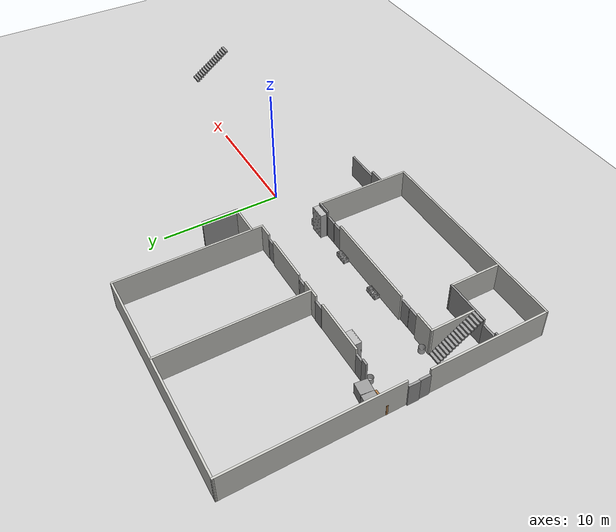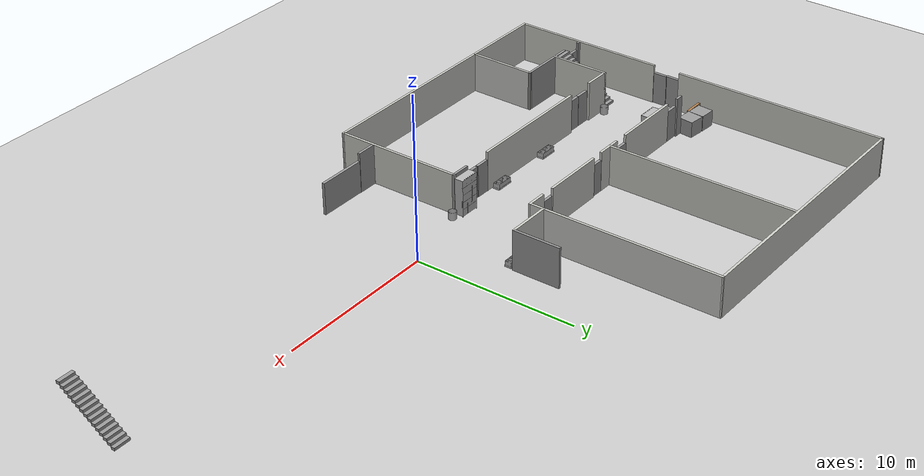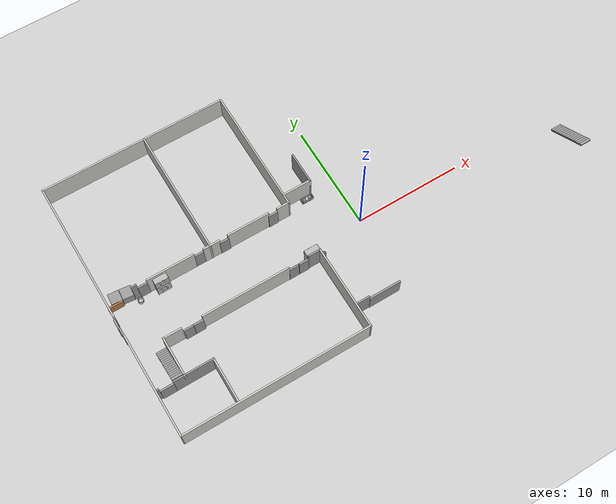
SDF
<sdf version="1.7">
 <world name="default">
  <model name="ground_plane">
   <static>1</static>
   <link name="link">
    <collision name="collision">
     <geometry><plane><normal>0 0 1</normal><size>100 100</size></plane></geometry>
     <surface><friction><ode><mu>100</mu><mu2>50</mu2></ode></friction></surface>
    </collision>
    <visual name="visual">
     <cast_shadows>0</cast_shadows>
     <geometry><plane><normal>0 0 1</normal><size>100 100</size></plane></geometry>
     <material>
      <script><uri>file://media/materials/scripts/gazebo.material</uri><name>Gazebo/Grey</name></script>
     </material>
    </visual>
   </link>
  </model>
  <model name="mts_dept">
   <pose>-0.0371 3.18794 0 0 -0 0</pose>
   <link name="Door_1">
    <collision name="Door_1_Collision">
     <geometry><box><size>0.9 0.17 2</size></box></geometry>
     <pose>0 0 1 0 -0 0</pose>
    </collision>
    <visual name="Door_1_Visual">
     <pose>0 0 1 0 -0 0</pose>
     <geometry><box><size>0.9 0.17 2</size></box></geometry>
     <material>
      <script><uri>file://media/materials/scripts/gazebo.material</uri><name>Gazebo/Grey</name></script>
     </material>
    </visual>
    <pose>-6.58213 -4.65147 0 0 -0 0</pose>
   </link>
   <link name="Door_13">
    <collision name="Door_13_Collision">
     <geometry><box><size>0.9 0.17 2</size></box></geometry>
     <pose>0 0 1 0 -0 0</pose>
    </collision>
    <visual name="Door_13_Visual">
     <pose>0 0 1 0 -0 0</pose>
     <geometry><box><size>0.9 0.17 2</size></box></geometry>
     <material>
      <script><uri>file://media/materials/scripts/gazebo.material</uri><name>Gazebo/Grey</name></script>
     </material>
    </visual>
    <pose>-22.3834 -2.29202 0 0 -0 -1.5708</pose>
   </link>
   <link name="Door_14">
    <collision name="Door_14_Collision">
     <geometry><box><size>0.9 0.17 2</size></box></geometry>
     <pose>0 0 1 0 -0 0</pose>
    </collision>
    <visual name="Door_14_Visual">
     <pose>0 0 1 0 -0 0</pose>
     <geometry><box><size>0.9 0.17 2</size></box></geometry>
     <material>
      <script><uri>file://media/materials/scripts/gazebo.material</uri><name>Gazebo/Grey</name></script>
     </material>
    </visual>
    <pose>-22.4286 -1.43294 0 0 0 -1.59865</pose>
   </link>
   <link name="Door_2">
    <collision name="Door_2_Collision">
     <geometry><box><size>0.9 0.17 2</size></box></geometry>
     <pose>0 0 1 0 -0 0</pose>
    </collision>
    <visual name="Door_2_Visual">
     <pose>0 0 1 0 -0 0</pose>
     <geometry><box><size>0.9 0.17 2</size></box></geometry>
     <material>
      <script><uri>file://media/materials/scripts/gazebo.material</uri><name>Gazebo/Grey</name></script>
     </material>
    </visual>
    <pose>-7.54552 -4.6498 0 0 -0 0</pose>
   </link>
   <link name="Door_20">
    <collision name="Door_20_Collision">
     <geometry><box><size>3 0.17 2</size></box></geometry>
     <pose>0 0 1 0 -0 0</pose>
    </collision>
    <visual name="Door_20_Visual">
     <pose>0 0 1 0 -0 0</pose>
     <geometry><box><size>3 0.17 2</size></box></geometry>
     <material>
      <script><uri>file://media/materials/scripts/gazebo.material</uri><name>Gazebo/Grey</name></script>
     </material>
    </visual>
    <pose>-2.13617 -10.29 0 0 -0 0</pose>
   </link>
   <link name="Door_3">
    <collision name="Door_3_Collision">
     <geometry><box><size>0.9 0.17 2</size></box></geometry>
     <pose>0 0 1 0 -0 0</pose>
    </collision>
    <visual name="Door_3_Visual">
     <pose>0 0 1 0 -0 0</pose>
     <geometry><box><size>0.9 0.17 2</size></box></geometry>
     <material>
      <script><uri>file://media/materials/scripts/gazebo.material</uri><name>Gazebo/Grey</name></script>
     </material>
    </visual>
    <pose>-16.6533 -4.77247 0 0 -0 0</pose>
   </link>
   <link name="Door_4">
    <collision name="Door_4_Collision">
     <geometry><box><size>0.9 0.17 2</size></box></geometry>
     <pose>0 0 1 0 -0 0</pose>
    </collision>
    <visual name="Door_4_Visual">
     <pose>0 0 1 0 -0 0</pose>
     <geometry><box><size>0.9 0.17 2</size></box></geometry>
     <material>
      <script><uri>file://media/materials/scripts/gazebo.material</uri><name>Gazebo/Grey</name></script>
     </material>
    </visual>
    <pose>-17.5712 -4.7776 0 0 -0 0</pose>
   </link>
   <link name="Door_5">
    <collision name="Door_5_Collision">
     <geometry><box><size>1.25 0.17 2</size></box></geometry>
     <pose>0 0 1 0 -0 0</pose>
    </collision>
    <visual name="Door_5_Visual">
     <pose>0 0 1 0 -0 0</pose>
     <geometry><box><size>1.25 0.17 2</size></box></geometry>
     <material>
      <script><uri>file://media/materials/scripts/gazebo.material</uri><name>Gazebo/Grey</name></script>
     </material>
    </visual>
    <pose>-21.413 -8.25478 0 0 -0 0</pose>
   </link>
   <link name="Door_6">
    <collision name="Door_6_Collision">
     <geometry><box><size>0.9 0.17 2</size></box></geometry>
     <pose>0 0 1 0 -0 0</pose>
    </collision>
    <visual name="Door_6_Visual">
     <pose>0 0 1 0 -0 0</pose>
     <geometry><box><size>0.9 0.17 2</size></box></geometry>
     <material>
      <script><uri>file://media/materials/scripts/gazebo.material</uri><name>Gazebo/Grey</name></script>
     </material>
    </visual>
    <pose>-6.55285 0.494639 0 0 -0 0</pose>
   </link>
   <link name="Door_7">
    <collision name="Door_7_Collision">
     <geometry><box><size>0.9 0.17 2</size></box></geometry>
     <pose>0 0 1 0 -0 0</pose>
    </collision>
    <visual name="Door_7_Visual">
     <pose>0 0 1 0 -0 0</pose>
     <geometry><box><size>0.9 0.17 2</size></box></geometry>
     <material>
      <script><uri>file://media/materials/scripts/gazebo.material</uri><name>Gazebo/Grey</name></script>
     </material>
    </visual>
    <pose>-11.3046 0.493458 0 0 -0 0</pose>
   </link>
   <link name="Door_8">
    <collision name="Door_8_Collision">
     <geometry><box><size>0.9 0.17 2</size></box></geometry>
     <pose>0 0 1 0 -0 0</pose>
    </collision>
    <visual name="Door_8_Visual">
     <pose>0 0 1 0 -0 0</pose>
     <geometry><box><size>0.9 0.17 2</size></box></geometry>
     <material>
      <script><uri>file://media/materials/scripts/gazebo.material</uri><name>Gazebo/Grey</name></script>
     </material>
    </visual>
    <pose>-13.6938 0.528828 0 0 -0 0</pose>
   </link>
   <link name="Door_9">
    <collision name="Door_9_Collision">
     <geometry><box><size>0.9 0.17 2</size></box></geometry>
     <pose>0 0 1 0 -0 0</pose>
    </collision>
    <visual name="Door_9_Visual">
     <pose>0 0 1 0 -0 0</pose>
     <geometry><box><size>0.9 0.17 2</size></box></geometry>
     <material>
      <script><uri>file://media/materials/scripts/gazebo.material</uri><name>Gazebo/Grey</name></script>
     </material>
    </visual>
    <pose>-19.0487 0.509221 0 0 -0 0</pose>
   </link>
   <link name="Stairs_0">
    <visual name="Stairs_0_Visual_0">
     <pose>-20.3275 -4.74708 0.083333 0 -0 0</pose>
     <geometry><box><size>1 0.233333 0.166667</size></box></geometry>
     <material>
      <script><uri>file://media/materials/scripts/gazebo.material</uri><name>Gazebo/Grey</name></script>
      <ambient>1 1 1 1</ambient>
     </material>
     <meta><layer>0</layer></meta>
    </visual>
    <collision name="Stairs_0_Collision_0">
     <geometry><box><size>1 0.233333 0.166667</size></box></geometry>
     <pose>-20.3275 -4.74708 0.083333 0 -0 0</pose>
    </collision>
    <visual name="Stairs_0_Visual_1">
     <pose>-20.3275 -4.98041 0.25 0 -0 0</pose>
     <geometry><box><size>1 0.233333 0.166667</size></box></geometry>
     <material>
      <script><uri>file://media/materials/scripts/gazebo.material</uri><name>Gazebo/Grey</name></script>
      <ambient>1 1 1 1</ambient>
     </material>
     <meta><layer>0</layer></meta>
    </visual>
    <collision name="Stairs_0_Collision_1">
     <geometry><box><size>1 0.233333 0.166667</size></box></geometry>
     <pose>-20.3275 -4.98041 0.25 0 -0 0</pose>
    </collision>
    <visual name="Stairs_0_Visual_2">
     <pose>-20.3275 -5.21374 0.416667 0 -0 0</pose>
     <geometry><box><size>1 0.233333 0.166667</size></box></geometry>
     <material>
      <script><uri>file://media/materials/scripts/gazebo.material</uri><name>Gazebo/Grey</name></script>
      <ambient>1 1 1 1</ambient>
     </material>
     <meta><layer>0</layer></meta>
    </visual>
    <collision name="Stairs_0_Collision_2">
     <geometry><box><size>1 0.233333 0.166667</size></box></geometry>
     <pose>-20.3275 -5.21374 0.416667 0 -0 0</pose>
    </collision>
    <visual name="Stairs_0_Visual_3">
     <pose>-20.3275 -5.44708 0.583333 0 -0 0</pose>
     <geometry><box><size>1 0.233333 0.166667</size></box></geometry>
     <material>
      <script><uri>file://media/materials/scripts/gazebo.material</uri><name>Gazebo/Grey</name></script>
      <ambient>1 1 1 1</ambient>
     </material>
     <meta><layer>0</layer></meta>
    </visual>
    <collision name="Stairs_0_Collision_3">
     <geometry><box><size>1 0.233333 0.166667</size></box></geometry>
     <pose>-20.3275 -5.44708 0.583333 0 -0 0</pose>
    </collision>
    <visual name="Stairs_0_Visual_4">
     <pose>-20.3275 -5.68041 0.75 0 -0 0</pose>
     <geometry><box><size>1 0.233333 0.166667</size></box></geometry>
     <material>
      <script><uri>file://media/materials/scripts/gazebo.material</uri><name>Gazebo/Grey</name></script>
      <ambient>1 1 1 1</ambient>
     </material>
     <meta><layer>0</layer></meta>
    </visual>
    <collision name="Stairs_0_Collision_4">
     <geometry><box><size>1 0.233333 0.166667</size></box></geometry>
     <pose>-20.3275 -5.68041 0.75 0 -0 0</pose>
    </collision>
    <visual name="Stairs_0_Visual_5">
     <pose>-20.3275 -5.91374 0.916667 0 -0 0</pose>
     <geometry><box><size>1 0.233333 0.166667</size></box></geometry>
     <material>
      <script><uri>file://media/materials/scripts/gazebo.material</uri><name>Gazebo/Grey</name></script>
      <ambient>1 1 1 1</ambient>
     </material>
     <meta><layer>0</layer></meta>
    </visual>
    <collision name="Stairs_0_Collision_5">
     <geometry><box><size>1 0.233333 0.166667</size></box></geometry>
     <pose>-20.3275 -5.91374 0.916667 0 -0 0</pose>
    </collision>
    <visual name="Stairs_0_Visual_6">
     <pose>-20.3275 -6.14708 1.08333 0 -0 0</pose>
     <geometry><box><size>1 0.233333 0.166667</size></box></geometry>
     <material>
      <script><uri>file://media/materials/scripts/gazebo.material</uri><name>Gazebo/Grey</name></script>
      <ambient>1 1 1 1</ambient>
     </material>
     <meta><layer>0</layer></meta>
    </visual>
    <collision name="Stairs_0_Collision_6">
     <geometry><box><size>1 0.233333 0.166667</size></box></geometry>
     <pose>-20.3275 -6.14708 1.08333 0 -0 0</pose>
    </collision>
    <visual name="Stairs_0_Visual_7">
     <pose>-20.3275 -6.38041 1.25 0 -0 0</pose>
     <geometry><box><size>1 0.233333 0.166667</size></box></geometry>
     <material>
      <script><uri>file://media/materials/scripts/gazebo.material</uri><name>Gazebo/Grey</name></script>
      <ambient>1 1 1 1</ambient>
     </material>
     <meta><layer>0</layer></meta>
    </visual>
    <collision name="Stairs_0_Collision_7">
     <geometry><box><size>1 0.233333 0.166667</size></box></geometry>
     <pose>-20.3275 -6.38041 1.25 0 -0 0</pose>
    </collision>
    <visual name="Stairs_0_Visual_8">
     <pose>-20.3275 -6.61374 1.41667 0 -0 0</pose>
     <geometry><box><size>1 0.233333 0.166667</size></box></geometry>
     <material>
      <script><uri>file://media/materials/scripts/gazebo.material</uri><name>Gazebo/Grey</name></script>
      <ambient>1 1 1 1</ambient>
     </material>
     <meta><layer>0</layer></meta>
    </visual>
    <collision name="Stairs_0_Collision_8">
     <geometry><box><size>1 0.233333 0.166667</size></box></geometry>
     <pose>-20.3275 -6.61374 1.41667 0 -0 0</pose>
    </collision>
    <visual name="Stairs_0_Visual_9">
     <pose>-20.3275 -6.84708 1.58333 0 -0 0</pose>
     <geometry><box><size>1 0.233333 0.166667</size></box></geometry>
     <material>
      <script><uri>file://media/materials/scripts/gazebo.material</uri><name>Gazebo/Grey</name></script>
      <ambient>1 1 1 1</ambient>
     </material>
     <meta><layer>0</layer></meta>
    </visual>
    <collision name="Stairs_0_Collision_9">
     <geometry><box><size>1 0.233333 0.166667</size></box></geometry>
     <pose>-20.3275 -6.84708 1.58333 0 -0 0</pose>
    </collision>
    <visual name="Stairs_0_Visual_10">
     <pose>-20.3275 -7.08041 1.75 0 -0 0</pose>
     <geometry><box><size>1 0.233333 0.166667</size></box></geometry>
     <material>
      <script><uri>file://media/materials/scripts/gazebo.material</uri><name>Gazebo/Grey</name></script>
      <ambient>1 1 1 1</ambient>
     </material>
     <meta><layer>0</layer></meta>
    </visual>
    <collision name="Stairs_0_Collision_10">
     <geometry><box><size>1 0.233333 0.166667</size></box></geometry>
     <pose>-20.3275 -7.08041 1.75 0 -0 0</pose>
    </collision>
    <visual name="Stairs_0_Visual_11">
     <pose>-20.3275 -7.31374 1.91667 0 -0 0</pose>
     <geometry><box><size>1 0.233333 0.166667</size></box></geometry>
     <material>
      <script><uri>file://media/materials/scripts/gazebo.material</uri><name>Gazebo/Grey</name></script>
      <ambient>1 1 1 1</ambient>
     </material>
     <meta><layer>0</layer></meta>
    </visual>
    <collision name="Stairs_0_Collision_11">
     <geometry><box><size>1 0.233333 0.166667</size></box></geometry>
     <pose>-20.3275 -7.31374 1.91667 0 -0 0</pose>
    </collision>
    <visual name="Stairs_0_Visual_12">
     <pose>-20.3275 -7.54708 2.08333 0 -0 0</pose>
     <geometry><box><size>1 0.233333 0.166667</size></box></geometry>
     <material>
      <script><uri>file://media/materials/scripts/gazebo.material</uri><name>Gazebo/Grey</name></script>
      <ambient>1 1 1 1</ambient>
     </material>
     <meta><layer>0</layer></meta>
    </visual>
    <collision name="Stairs_0_Collision_12">
     <geometry><box><size>1 0.233333 0.166667</size></box></geometry>
     <pose>-20.3275 -7.54708 2.08333 0 -0 0</pose>
    </collision>
    <visual name="Stairs_0_Visual_13">
     <pose>-20.3275 -7.78041 2.25 0 -0 0</pose>
     <geometry><box><size>1 0.233333 0.166667</size></box></geometry>
     <material>
      <script><uri>file://media/materials/scripts/gazebo.material</uri><name>Gazebo/Grey</name></script>
      <ambient>1 1 1 1</ambient>
     </material>
     <meta><layer>0</layer></meta>
    </visual>
    <collision name="Stairs_0_Collision_13">
     <geometry><box><size>1 0.233333 0.166667</size></box></geometry>
     <pose>-20.3275 -7.78041 2.25 0 -0 0</pose>
    </collision>
    <visual name="Stairs_0_Visual_14">
     <pose>-20.3275 -8.01374 2.41667 0 -0 0</pose>
     <geometry><box><size>1 0.233333 0.166667</size></box></geometry>
     <material>
      <script><uri>file://media/materials/scripts/gazebo.material</uri><name>Gazebo/Grey</name></script>
      <ambient>1 1 1 1</ambient>
     </material>
     <meta><layer>0</layer></meta>
    </visual>
    <collision name="Stairs_0_Collision_14">
     <geometry><box><size>1 0.233333 0.166667</size></box></geometry>
     <pose>-20.3275 -8.01374 2.41667 0 -0 0</pose>
    </collision>
   </link>
   <link name="Stairs_2">
    <visual name="Stairs_2_Visual_0">
     <pose>20.1606 -4.63881 0.083333 0 -0 0</pose>
     <geometry><box><size>1 0.233333 0.166667</size></box></geometry>
     <material>
      <script><uri>file://media/materials/scripts/gazebo.material</uri><name>Gazebo/Grey</name></script>
      <ambient>1 1 1 1</ambient>
     </material>
     <meta><layer>0</layer></meta>
    </visual>
    <collision name="Stairs_2_Collision_0">
     <geometry><box><size>1 0.233333 0.166667</size></box></geometry>
     <pose>20.1606 -4.63881 0.083333 0 -0 0</pose>
    </collision>
    <visual name="Stairs_2_Visual_1">
     <pose>20.1606 -4.87214 0.25 0 -0 0</pose>
     <geometry><box><size>1 0.233333 0.166667</size></box></geometry>
     <material>
      <script><uri>file://media/materials/scripts/gazebo.material</uri><name>Gazebo/Grey</name></script>
      <ambient>1 1 1 1</ambient>
     </material>
     <meta><layer>0</layer></meta>
    </visual>
    <collision name="Stairs_2_Collision_1">
     <geometry><box><size>1 0.233333 0.166667</size></box></geometry>
     <pose>20.1606 -4.87214 0.25 0 -0 0</pose>
    </collision>
    <visual name="Stairs_2_Visual_2">
     <pose>20.1606 -5.10548 0.416667 0 -0 0</pose>
     <geometry><box><size>1 0.233333 0.166667</size></box></geometry>
     <material>
      <script><uri>file://media/materials/scripts/gazebo.material</uri><name>Gazebo/Grey</name></script>
      <ambient>1 1 1 1</ambient>
     </material>
     <meta><layer>0</layer></meta>
    </visual>
    <collision name="Stairs_2_Collision_2">
     <geometry><box><size>1 0.233333 0.166667</size></box></geometry>
     <pose>20.1606 -5.10548 0.416667 0 -0 0</pose>
    </collision>
    <visual name="Stairs_2_Visual_3">
     <pose>20.1606 -5.33881 0.583333 0 -0 0</pose>
     <geometry><box><size>1 0.233333 0.166667</size></box></geometry>
     <material>
      <script><uri>file://media/materials/scripts/gazebo.material</uri><name>Gazebo/Grey</name></script>
      <ambient>1 1 1 1</ambient>
     </material>
     <meta><layer>0</layer></meta>
    </visual>
    <collision name="Stairs_2_Collision_3">
     <geometry><box><size>1 0.233333 0.166667</size></box></geometry>
     <pose>20.1606 -5.33881 0.583333 0 -0 0</pose>
    </collision>
    <visual name="Stairs_2_Visual_4">
     <pose>20.1606 -5.57214 0.75 0 -0 0</pose>
     <geometry><box><size>1 0.233333 0.166667</size></box></geometry>
     <material>
      <script><uri>file://media/materials/scripts/gazebo.material</uri><name>Gazebo/Grey</name></script>
      <ambient>1 1 1 1</ambient>
     </material>
     <meta><layer>0</layer></meta>
    </visual>
    <collision name="Stairs_2_Collision_4">
     <geometry><box><size>1 0.233333 0.166667</size></box></geometry>
     <pose>20.1606 -5.57214 0.75 0 -0 0</pose>
    </collision>
    <visual name="Stairs_2_Visual_5">
     <pose>20.1606 -5.80548 0.916667 0 -0 0</pose>
     <geometry><box><size>1 0.233333 0.166667</size></box></geometry>
     <material>
      <script><uri>file://media/materials/scripts/gazebo.material</uri><name>Gazebo/Grey</name></script>
      <ambient>1 1 1 1</ambient>
     </material>
     <meta><layer>0</layer></meta>
    </visual>
    <collision name="Stairs_2_Collision_5">
     <geometry><box><size>1 0.233333 0.166667</size></box></geometry>
     <pose>20.1606 -5.80548 0.916667 0 -0 0</pose>
    </collision>
    <visual name="Stairs_2_Visual_6">
     <pose>20.1606 -6.03881 1.08333 0 -0 0</pose>
     <geometry><box><size>1 0.233333 0.166667</size></box></geometry>
     <material>
      <script><uri>file://media/materials/scripts/gazebo.material</uri><name>Gazebo/Grey</name></script>
      <ambient>1 1 1 1</ambient>
     </material>
     <meta><layer>0</layer></meta>
    </visual>
    <collision name="Stairs_2_Collision_6">
     <geometry><box><size>1 0.233333 0.166667</size></box></geometry>
     <pose>20.1606 -6.03881 1.08333 0 -0 0</pose>
    </collision>
    <visual name="Stairs_2_Visual_7">
     <pose>20.1606 -6.27214 1.25 0 -0 0</pose>
     <geometry><box><size>1 0.233333 0.166667</size></box></geometry>
     <material>
      <script><uri>file://media/materials/scripts/gazebo.material</uri><name>Gazebo/Grey</name></script>
      <ambient>1 1 1 1</ambient>
     </material>
     <meta><layer>0</layer></meta>
    </visual>
    <collision name="Stairs_2_Collision_7">
     <geometry><box><size>1 0.233333 0.166667</size></box></geometry>
     <pose>20.1606 -6.27214 1.25 0 -0 0</pose>
    </collision>
    <visual name="Stairs_2_Visual_8">
     <pose>20.1606 -6.50548 1.41667 0 -0 0</pose>
     <geometry><box><size>1 0.233333 0.166667</size></box></geometry>
     <material>
      <script><uri>file://media/materials/scripts/gazebo.material</uri><name>Gazebo/Grey</name></script>
      <ambient>1 1 1 1</ambient>
     </material>
     <meta><layer>0</layer></meta>
    </visual>
    <collision name="Stairs_2_Collision_8">
     <geometry><box><size>1 0.233333 0.166667</size></box></geometry>
     <pose>20.1606 -6.50548 1.41667 0 -0 0</pose>
    </collision>
    <visual name="Stairs_2_Visual_9">
     <pose>20.1606 -6.73881 1.58333 0 -0 0</pose>
     <geometry><box><size>1 0.233333 0.166667</size></box></geometry>
     <material>
      <script><uri>file://media/materials/scripts/gazebo.material</uri><name>Gazebo/Grey</name></script>
      <ambient>1 1 1 1</ambient>
     </material>
     <meta><layer>0</layer></meta>
    </visual>
    <collision name="Stairs_2_Collision_9">
     <geometry><box><size>1 0.233333 0.166667</size></box></geometry>
     <pose>20.1606 -6.73881 1.58333 0 -0 0</pose>
    </collision>
    <visual name="Stairs_2_Visual_10">
     <pose>20.1606 -6.97214 1.75 0 -0 0</pose>
     <geometry><box><size>1 0.233333 0.166667</size></box></geometry>
     <material>
      <script><uri>file://media/materials/scripts/gazebo.material</uri><name>Gazebo/Grey</name></script>
      <ambient>1 1 1 1</ambient>
     </material>
     <meta><layer>0</layer></meta>
    </visual>
    <collision name="Stairs_2_Collision_10">
     <geometry><box><size>1 0.233333 0.166667</size></box></geometry>
     <pose>20.1606 -6.97214 1.75 0 -0 0</pose>
    </collision>
    <visual name="Stairs_2_Visual_11">
     <pose>20.1606 -7.20548 1.91667 0 -0 0</pose>
     <geometry><box><size>1 0.233333 0.166667</size></box></geometry>
     <material>
      <script><uri>file://media/materials/scripts/gazebo.material</uri><name>Gazebo/Grey</name></script>
      <ambient>1 1 1 1</ambient>
     </material>
     <meta><layer>0</layer></meta>
    </visual>
    <collision name="Stairs_2_Collision_11">
     <geometry><box><size>1 0.233333 0.166667</size></box></geometry>
     <pose>20.1606 -7.20548 1.91667 0 -0 0</pose>
    </collision>
    <visual name="Stairs_2_Visual_12">
     <pose>20.1606 -7.43881 2.08333 0 -0 0</pose>
     <geometry><box><size>1 0.233333 0.166667</size></box></geometry>
     <material>
      <script><uri>file://media/materials/scripts/gazebo.material</uri><name>Gazebo/Grey</name></script>
      <ambient>1 1 1 1</ambient>
     </material>
     <meta><layer>0</layer></meta>
    </visual>
    <collision name="Stairs_2_Collision_12">
     <geometry><box><size>1 0.233333 0.166667</size></box></geometry>
     <pose>20.1606 -7.43881 2.08333 0 -0 0</pose>
    </collision>
    <visual name="Stairs_2_Visual_13">
     <pose>20.1606 -7.67214 2.25 0 -0 0</pose>
     <geometry><box><size>1 0.233333 0.166667</size></box></geometry>
     <material>
      <script><uri>file://media/materials/scripts/gazebo.material</uri><name>Gazebo/Grey</name></script>
      <ambient>1 1 1 1</ambient>
     </material>
     <meta><layer>0</layer></meta>
    </visual>
    <collision name="Stairs_2_Collision_13">
     <geometry><box><size>1 0.233333 0.166667</size></box></geometry>
     <pose>20.1606 -7.67214 2.25 0 -0 0</pose>
    </collision>
    <visual name="Stairs_2_Visual_14">
     <pose>20.1606 -7.90548 2.41667 0 -0 0</pose>
     <geometry><box><size>1 0.233333 0.166667</size></box></geometry>
     <material>
      <script><uri>file://media/materials/scripts/gazebo.material</uri><name>Gazebo/Grey</name></script>
      <ambient>1 1 1 1</ambient>
     </material>
     <meta><layer>0</layer></meta>
    </visual>
    <collision name="Stairs_2_Collision_14">
     <geometry><box><size>1 0.233333 0.166667</size></box></geometry>
     <pose>20.1606 -7.90548 2.41667 0 -0 0</pose>
    </collision>
   </link>
   <link name="Wall_104">
    <collision name="Wall_104_Collision">
     <geometry><box><size>13.5 0.15 2.5</size></box></geometry>
     <pose>0 0 1.25 0 -0 0</pose>
    </collision>
    <visual name="Wall_104_Visual">
     <pose>0 0 1.25 0 -0 0</pose>
     <geometry><box><size>13.5 0.15 2.5</size></box></geometry>
     <material>
      <script><uri>file://media/materials/scripts/gazebo.material</uri><name>Gazebo/CeilingTiled</name></script>
      <ambient>1 1 1 1</ambient>
     </material>
     <meta><layer>0</layer></meta>
    </visual>
    <pose>-22.3402 5.7797 0 0 -0 -1.5708</pose>
   </link>
   <link name="Wall_109">
    <collision name="Wall_109_Collision">
     <geometry><box><size>9.75 0.15 2.5</size></box></geometry>
     <pose>0 0 1.25 0 -0 0</pose>
    </collision>
    <visual name="Wall_109_Visual">
     <pose>0 0 1.25 0 -0 0</pose>
     <geometry><box><size>9.75 0.15 2.5</size></box></geometry>
     <material>
      <script><uri>file://media/materials/scripts/gazebo.material</uri><name>Gazebo/CeilingTiled</name></script>
      <ambient>1 1 1 1</ambient>
     </material>
     <meta><layer>0</layer></meta>
    </visual>
    <pose>-22.3402 -7.5953 0 0 -0 1.5708</pose>
   </link>
   <link name="Wall_124">
    <collision name="Wall_124_Collision">
     <geometry><box><size>3.75 0.15 2.5</size></box></geometry>
     <pose>0 0 1.25 0 -0 0</pose>
    </collision>
    <visual name="Wall_124_Visual">
     <pose>0 0 1.25 0 -0 0</pose>
     <geometry><box><size>3.75 0.15 2.5</size></box></geometry>
     <material>
      <script><uri>file://media/materials/scripts/gazebo.material</uri><name>Gazebo/CeilingTiled</name></script>
      <ambient>1 1 1 1</ambient>
     </material>
     <meta><layer>0</layer></meta>
    </visual>
    <pose>-19.7688 -6.45147 0 0 -0 -1.5708</pose>
   </link>
   <link name="Wall_141">
    <collision name="Wall_141_Collision">
     <geometry><box><size>3 0.15 2.5</size></box></geometry>
     <pose>0 0 1.25 0 -0 0</pose>
    </collision>
    <visual name="Wall_141_Visual">
     <pose>0 0 1.25 0 -0 0</pose>
     <geometry><box><size>3 0.15 2.5</size></box></geometry>
     <material>
      <script><uri>file://media/materials/scripts/gazebo.material</uri><name>Gazebo/Grey</name></script>
      <ambient>1 1 1 1</ambient>
     </material>
     <meta><layer>0</layer></meta>
    </visual>
    <pose>-2.31448 2.81677 0 0 -0 1.5708</pose>
   </link>
   <link name="Wall_143">
    <collision name="Wall_143_Collision">
     <geometry><box><size>2.75 0.15 2.5</size></box></geometry>
     <pose>0 0 1.25 0 -0 0</pose>
    </collision>
    <visual name="Wall_143_Visual">
     <pose>0 0 1.25 0 -0 0</pose>
     <geometry><box><size>2.75 0.15 2.5</size></box></geometry>
     <material>
      <script><uri>file://media/materials/scripts/gazebo.material</uri><name>Gazebo/CeilingTiled</name></script>
      <ambient>1 1 1 1</ambient>
     </material>
     <meta><layer>0</layer></meta>
    </visual>
    <pose>-3.61449 1.39177 0 0 -0 0</pose>
   </link>
   <link name="Wall_149">
    <collision name="Wall_149_Collision">
     <geometry><box><size>1.25 0.15 2.5</size></box></geometry>
     <pose>0 0 1.25 0 -0 0</pose>
    </collision>
    <visual name="Wall_149_Visual">
     <pose>0 0 1.25 0 -0 0</pose>
     <geometry><box><size>1.25 0.15 2.5</size></box></geometry>
     <material>
      <script><uri>file://media/materials/scripts/gazebo.material</uri><name>Gazebo/Grey</name></script>
      <ambient>1 1 1 1</ambient>
     </material>
     <meta><layer>0</layer></meta>
    </visual>
    <pose>-4.26152 -10.26 0 0 -0 3.14159</pose>
   </link>
   <link name="Wall_151">
    <collision name="Wall_151_Collision">
     <geometry><box><size>12 0.15 2.5</size></box></geometry>
     <pose>0 0 1.25 0 -0 0</pose>
    </collision>
    <visual name="Wall_151_Visual">
     <pose>0 0 1.25 0 -0 0</pose>
     <geometry><box><size>12 0.15 2.5</size></box></geometry>
     <material>
      <script><uri>file://media/materials/scripts/gazebo.material</uri><name>Gazebo/CeilingTiled</name></script>
      <ambient>1 1 1 1</ambient>
     </material>
     <meta><layer>0</layer></meta>
    </visual>
    <pose>-12.6013 6.44232 0 0 -0 1.5708</pose>
   </link>
   <link name="Wall_153">
    <collision name="Wall_153_Collision">
     <geometry><box><size>4 0.15 2.5</size></box></geometry>
     <pose>0 0 1.25 0 -0 0</pose>
    </collision>
    <visual name="Wall_153_Visual">
     <pose>0 0 1.25 0 -0 0</pose>
     <geometry><box><size>4 0.15 2.5</size></box></geometry>
     <material>
      <script><uri>file://media/materials/scripts/gazebo.material</uri><name>Gazebo/CeilingTiled</name></script>
      <ambient>1 1 1 1</ambient>
     </material>
     <meta><layer>0</layer></meta>
    </visual>
    <pose>-8.91338 0.557706 0 0 -0 3.14159</pose>
   </link>
   <link name="Wall_155">
    <collision name="Wall_155_Collision">
     <geometry><box><size>1 0.15 2.5</size></box></geometry>
     <pose>0 0 1.25 0 -0 0</pose>
    </collision>
    <visual name="Wall_155_Visual">
     <pose>0 0 1.25 0 -0 0</pose>
     <geometry><box><size>1 0.15 2.5</size></box></geometry>
     <material>
      <script><uri>file://media/materials/scripts/gazebo.material</uri><name>Gazebo/CeilingTiled</name></script>
      <ambient>1 1 1 1</ambient>
     </material>
     <meta><layer>0</layer></meta>
    </visual>
    <pose>-12.1763 0.517323 0 0 -0 0</pose>
   </link>
   <link name="Wall_157">
    <collision name="Wall_157_Collision">
     <geometry><box><size>4.5 0.15 2.5</size></box></geometry>
     <pose>0 0 1.25 0 -0 0</pose>
    </collision>
    <visual name="Wall_157_Visual">
     <pose>0 0 1.25 0 -0 0</pose>
     <geometry><box><size>4.5 0.15 2.5</size></box></geometry>
     <material>
      <script><uri>file://media/materials/scripts/gazebo.material</uri><name>Gazebo/CeilingTiled</name></script>
      <ambient>1 1 1 1</ambient>
     </material>
     <meta><layer>0</layer></meta>
    </visual>
    <pose>-16.3742 0.519684 0 0 -0 0</pose>
   </link>
   <link name="Wall_160">
    <collision name="Wall_160_Collision">
     <geometry><box><size>0.75 0.15 2.5</size></box></geometry>
     <pose>0 0 1.25 0 -0 0</pose>
    </collision>
    <visual name="Wall_160_Visual">
     <pose>0 0 1.25 0 -0 0</pose>
     <geometry><box><size>0.75 0.15 2.5</size></box></geometry>
     <material>
      <script><uri>file://media/materials/scripts/gazebo.material</uri><name>Gazebo/CeilingTiled</name></script>
      <ambient>1 1 1 1</ambient>
     </material>
     <meta><layer>0</layer></meta>
    </visual>
    <pose>-12.9013 0.517323 0 0 -0 3.14159</pose>
   </link>
   <link name="Wall_166">
    <collision name="Wall_166_Collision">
     <geometry><box><size>0.5 0.15 2.5</size></box></geometry>
     <pose>0 0 1.25 0 -0 0</pose>
    </collision>
    <visual name="Wall_166_Visual">
     <pose>0 0 1.25 0 -0 0</pose>
     <geometry><box><size>0.5 0.15 2.5</size></box></geometry>
     <material>
      <script><uri>file://media/materials/scripts/gazebo.material</uri><name>Gazebo/Grey</name></script>
      <ambient>1 1 1 1</ambient>
     </material>
     <meta><layer>0</layer></meta>
    </visual>
    <pose>-19.7405 0.612956 0 0 -0 3.14159</pose>
   </link>
   <link name="Wall_3">
    <collision name="Wall_3_Collision">
     <geometry><box><size>17.5521 0.15 2.5</size></box></geometry>
     <pose>0 0 1.25 0 -0 0</pose>
    </collision>
    <visual name="Wall_3_Visual">
     <pose>0 0 1.25 0 -0 0</pose>
     <geometry><box><size>17.5521 0.15 2.5</size></box></geometry>
     <material>
      <script><uri>file://media/materials/scripts/gazebo.material</uri><name>Gazebo/CeilingTiled</name></script>
      <ambient>1 1 1 1</ambient>
     </material>
     <meta><layer>0</layer></meta>
    </visual>
    <pose>-13.6392 -12.4213 0 0 -0 -0.002988</pose>
   </link>
   <link name="Wall_33">
    <collision name="Wall_33_Collision">
     <geometry><box><size>17.5521 0.15 2.5</size></box></geometry>
     <pose>0 0 1.25 0 -0 0</pose>
    </collision>
    <visual name="Wall_33_Visual">
     <pose>0 0 1.25 0 -0 0</pose>
     <geometry><box><size>17.5521 0.15 2.5</size></box></geometry>
     <material>
      <script><uri>file://media/materials/scripts/gazebo.material</uri><name>Gazebo/CeilingTiled</name></script>
      <ambient>1 1 1 1</ambient>
     </material>
     <meta><layer>0</layer></meta>
    </visual>
    <pose>-13.6392 12.4287 0 0 -0 -0.002988</pose>
   </link>
   <link name="Wall_53">
    <collision name="Wall_53_Collision">
     <geometry><box><size>8 0.15 2.5</size></box></geometry>
     <pose>0 0 1.25 0 -0 0</pose>
    </collision>
    <visual name="Wall_53_Visual">
     <pose>0 0 1.25 0 -0 0</pose>
     <geometry><box><size>8 0.15 2.5</size></box></geometry>
     <material>
      <script><uri>file://media/materials/scripts/gazebo.material</uri><name>Gazebo/CeilingTiled</name></script>
      <ambient>1 1 1 1</ambient>
     </material>
     <meta><layer>0</layer></meta>
    </visual>
    <pose>-4.93823 -8.52229 0 0 -0 1.5708</pose>
   </link>
   <link name="Wall_57">
    <collision name="Wall_57_Collision">
     <geometry><box><size>12.0205 0.15 2.5</size></box></geometry>
     <pose>0 0 1.25 0 -0 0</pose>
    </collision>
    <visual name="Wall_57_Visual">
     <pose>0 0 1.25 0 -0 0</pose>
     <geometry><box><size>12.0205 0.15 2.5</size></box></geometry>
     <material>
      <script><uri>file://media/materials/scripts/gazebo.material</uri><name>Gazebo/CeilingTiled</name></script>
      <ambient>1 1 1 1</ambient>
     </material>
     <meta><layer>0</layer></meta>
    </visual>
    <pose>-4.9417 6.46748 0 0 -0 1.57021</pose>
   </link>
   <link name="Wall_63">
    <collision name="Wall_63_Collision">
     <geometry><box><size>3.75 0.15 2.5</size></box></geometry>
     <pose>0 0 1.25 0 -0 0</pose>
    </collision>
    <visual name="Wall_63_Visual">
     <pose>0 0 1.25 0 -0 0</pose>
     <geometry><box><size>3.75 0.15 2.5</size></box></geometry>
     <material>
      <script><uri>file://media/materials/scripts/gazebo.material</uri><name>Gazebo/Grey</name></script>
      <ambient>1 1 1 1</ambient>
     </material>
     <meta><layer>0</layer></meta>
    </visual>
    <pose>-18.9346 -8.25147 0 0 -0 0</pose>
   </link>
   <link name="Wall_64">
    <collision name="Wall_64_Collision">
     <geometry><box><size>4.25014 0.15 2.5</size></box></geometry>
     <pose>0 0 1.25 0 -0 0</pose>
    </collision>
    <visual name="Wall_64_Visual">
     <pose>0 0 1.25 0 -0 0</pose>
     <geometry><box><size>4.25014 0.15 2.5</size></box></geometry>
     <material>
      <script><uri>file://media/materials/scripts/gazebo.material</uri><name>Gazebo/CeilingTiled</name></script>
      <ambient>1 1 1 1</ambient>
     </material>
     <meta><layer>0</layer></meta>
    </visual>
    <pose>-17.1517 -10.3015 0 0 -0 -1.57913</pose>
   </link>
   <link name="Wall_66">
    <collision name="Wall_66_Collision">
     <geometry><box><size>1.25 0.15 2.5</size></box></geometry>
     <pose>0 0 1.25 0 -0 0</pose>
    </collision>
    <visual name="Wall_66_Visual">
     <pose>0 0 1.25 0 -0 0</pose>
     <geometry><box><size>1.25 0.15 2.5</size></box></geometry>
     <material>
      <script><uri>file://media/materials/scripts/gazebo.material</uri><name>Gazebo/Grey</name></script>
      <ambient>1 1 1 1</ambient>
     </material>
     <meta><layer>0</layer></meta>
    </visual>
    <pose>-5.48823 -4.59729 0 0 -0 3.14159</pose>
   </link>
   <link name="Wall_69">
    <collision name="Wall_69_Collision">
     <geometry><box><size>8.25 0.15 2.5</size></box></geometry>
     <pose>0 0 1.25 0 -0 0</pose>
    </collision>
    <visual name="Wall_69_Visual">
     <pose>0 0 1.25 0 -0 0</pose>
     <geometry><box><size>8.25 0.15 2.5</size></box></geometry>
     <material>
      <script><uri>file://media/materials/scripts/gazebo.material</uri><name>Gazebo/CeilingTiled</name></script>
      <ambient>1 1 1 1</ambient>
     </material>
     <meta><layer>0</layer></meta>
    </visual>
    <pose>-12.0952 -4.63077 0 0 -0 3.14159</pose>
   </link>
   <link name="Wall_72">
    <collision name="Wall_72_Collision">
     <geometry><box><size>1.75 0.15 2.5</size></box></geometry>
     <pose>0 0 1.25 0 -0 0</pose>
    </collision>
    <visual name="Wall_72_Visual">
     <pose>0 0 1.25 0 -0 0</pose>
     <geometry><box><size>1.75 0.15 2.5</size></box></geometry>
     <material>
      <script><uri>file://media/materials/scripts/gazebo.material</uri><name>Gazebo/CeilingTiled</name></script>
      <ambient>1 1 1 1</ambient>
     </material>
     <meta><layer>0</layer></meta>
    </visual>
    <pose>-18.9688 -4.65147 0 0 -0 0</pose>
   </link>
   <link name="Wall_74">
    <collision name="Wall_74_Collision">
     <geometry><box><size>0.25 0.15 2.5</size></box></geometry>
     <pose>0 0 1.25 0 -0 0</pose>
    </collision>
    <visual name="Wall_74_Visual">
     <pose>0 0 1.25 0 -0 0</pose>
     <geometry><box><size>0.25 0.15 2.5</size></box></geometry>
     <material>
      <script><uri>file://media/materials/scripts/gazebo.material</uri><name>Gazebo/Grey</name></script>
      <ambient>1 1 1 1</ambient>
     </material>
     <meta><layer>0</layer></meta>
    </visual>
    <pose>-22.1809 -8.1864 0 0 -0 3.14159</pose>
   </link>
   <link name="Wall_95">
    <collision name="Wall_95_Collision">
     <geometry><box><size>1.4 0.15 1</size></box></geometry>
     <pose>0 0 0.5 0 -0 0</pose>
    </collision>
    <visual name="Wall_95_Visual">
     <pose>0 0 0.5 0 -0 0</pose>
     <geometry><box><size>1.4 0.15 1</size></box></geometry>
     <material>
      <script><uri>file://media/materials/scripts/gazebo.material</uri><name>Gazebo/Wood</name></script>
      <ambient>1 1 1 1</ambient>
     </material>
     <meta><layer>0</layer></meta>
    </visual>
    <pose>-21.7353 0.54704 0 0 -0 0</pose>
   </link>
   <link name="Wall_98">
    <collision name="Wall_98_Collision">
     <geometry><box><size>1.25 0.15 2.5</size></box></geometry>
     <pose>0 0 1.25 0 -0 0</pose>
    </collision>
    <visual name="Wall_98_Visual">
     <pose>0 0 1.25 0 -0 0</pose>
     <geometry><box><size>1.25 0.15 2.5</size></box></geometry>
     <material>
      <script><uri>file://media/materials/scripts/gazebo.material</uri><name>Gazebo/CeilingTiled</name></script>
      <ambient>1 1 1 1</ambient>
     </material>
     <meta><layer>0</layer></meta>
    </visual>
    <pose>-5.49517 0.532252 0 0 -0 3.14159</pose>
   </link>
   <static>1</static>
  </model>
  <model name="locker">
   <link name="link_0">
    <visual name="visual">
     <geometry><mesh><uri>model://locker/meshes/locker.dae</uri><scale>0.9 0.9 0.9</scale></mesh></geometry>
     <cast_shadows>0</cast_shadows>
    </visual>
    <collision name="collision">
     <geometry><mesh><uri>model://locker/meshes/locker.dae</uri><scale>0.9 0.9 0.9</scale></mesh></geometry>
    </collision>
   </link>
   <static>1</static>
   <pose>-17.5606 3.30832 0 0 -0 0</pose>
  </model>
  <model name="locker_0">
   <link name="link_0">
    <visual name="visual">
     <geometry><mesh><uri>model://locker/meshes/locker.dae</uri><scale>0.9 0.9 0.9</scale></mesh></geometry>
     <cast_shadows>0</cast_shadows>
    </visual>
    <collision name="collision">
     <geometry><mesh><uri>model://locker/meshes/locker.dae</uri><scale>0.9 0.9 0.9</scale></mesh></geometry>
    </collision>
   </link>
   <static>1</static>
   <pose>-5.53786 -1.04478 0 0 -0 3.13886</pose>
  </model>
  <model name="unit_box">
   <pose>-20.4897 4.24275 0.499995 0 -1e-05 -0.115023</pose>
   <link name="link">
    <inertial>
     <mass>1</mass>
     <inertia>
      <ixx>0.166667</ixx>
      <ixy>0</ixy>
      <ixz>0</ixz>
      <iyy>0.166667</iyy>
      <iyz>0</iyz>
      <izz>0.166667</izz>
     </inertia>
    </inertial>
    <collision name="collision"><geometry><box><size>1 1 1</size></box></geometry></collision>
    <visual name="visual">
     <geometry><box><size>1 1 1</size></box></geometry>
     <material>
      <script><name>Gazebo/Grey</name><uri>file://media/materials/scripts/gazebo.material</uri></script>
     </material>
    </visual>
   </link>
  </model>
  <model name="unit_box_0">
   <pose>-21.5039 4.34441 0.5 0 -0 -0.076042</pose>
   <link name="link">
    <inertial>
     <mass>1</mass>
     <inertia>
      <ixx>0.166667</ixx>
      <ixy>0</ixy>
      <ixz>0</ixz>
      <iyy>0.166667</iyy>
      <iyz>0</iyz>
      <izz>0.166667</izz>
     </inertia>
    </inertial>
    <collision name="collision"><geometry><box><size>1 1 1</size></box></geometry></collision>
    <visual name="visual">
     <geometry><box><size>1 1 1</size></box></geometry>
     <material>
      <script><name>Gazebo/Grey</name><uri>file://media/materials/scripts/gazebo.material</uri></script>
     </material>
    </visual>
   </link>
  </model>
  <model name="plant_wooden_box">
   <link name="link_0">
    <visual name="visual">
     <geometry>
      <mesh><uri>model://plant_wooden_box/meshes/plant_wooden_box.dae</uri><scale>0.8 1 1</scale></mesh>
     </geometry>
     <cast_shadows>0</cast_shadows>
    </visual>
    <collision name="collision">
     <geometry>
      <mesh><uri>model://plant_wooden_box/meshes/plant_wooden_box.stl</uri><scale>0.8 1 1</scale></mesh>
     </geometry>
    </collision>
   </link>
   <static>1</static>
   <pose>-2.89391 4.18466 -0 0 -0 0</pose>
  </model>
  <model name="plant_wooden_box_5">
   <link name="link_0">
    <visual name="visual">
     <geometry>
      <mesh><uri>model://plant_wooden_box/meshes/plant_wooden_box.dae</uri><scale>0.8 1 1</scale></mesh>
     </geometry>
     <cast_shadows>0</cast_shadows>
    </visual>
    <collision name="collision">
     <geometry>
      <mesh><uri>model://plant_wooden_box/meshes/plant_wooden_box.stl</uri><scale>0.8 1 1</scale></mesh>
     </geometry>
    </collision>
   </link>
   <static>1</static>
   <pose>-8.96124 -1.08352 0 0 -0 0</pose>
  </model>
  <model name="plant_wooden_box_7">
   <link name="link_0">
    <visual name="visual">
     <geometry>
      <mesh><uri>model://plant_wooden_box/meshes/plant_wooden_box.dae</uri><scale>0.8 1 1</scale></mesh>
     </geometry>
     <cast_shadows>0</cast_shadows>
    </visual>
    <collision name="collision">
     <geometry>
      <mesh><uri>model://plant_wooden_box/meshes/plant_wooden_box.stl</uri><scale>0.8 1 1</scale></mesh>
     </geometry>
    </collision>
   </link>
   <static>1</static>
   <pose>-13.2559 -1.10272 0 0 -0 0</pose>
  </model>
  <model name="flower_pot_3">
   <link name="link_0">
    <visual name="visual">
     <geometry>
      <mesh><uri>model://flower_pot/meshes/flower_pot.dae</uri><scale>1.35 1.35 1.35</scale></mesh>
     </geometry>
     <cast_shadows>0</cast_shadows>
    </visual>
    <collision name="collision">
     <geometry>
      <mesh><uri>model://flower_pot/meshes/flower_pot.stl</uri><scale>1.35 1.35 1.35</scale></mesh>
     </geometry>
    </collision>
    <inertial>
     <inertia><ixx>1</ixx><ixy>0</ixy><ixz>0</ixz><iyy>1</iyy><iyz>0</iyz><izz>1</izz></inertia>
     <mass>1</mass>
    </inertial>
   </link>
   <static>0</static>
   <pose>-19.7461 3.27872 3e-06 -1e-05 -8e-06 -1e-06</pose>
  </model>
  <model name="flower_pot_2">
   <link name="link_0">
    <visual name="visual">
     <geometry>
      <mesh><uri>model://flower_pot/meshes/flower_pot.dae</uri><scale>1.35 1.35 1.35</scale></mesh>
     </geometry>
     <cast_shadows>0</cast_shadows>
    </visual>
    <collision name="collision">
     <geometry>
      <mesh><uri>model://flower_pot/meshes/flower_pot.stl</uri><scale>1.35 1.35 1.35</scale></mesh>
     </geometry>
    </collision>
    <inertial>
     <inertia><ixx>1</ixx><ixy>0</ixy><ixz>0</ixz><iyy>1</iyy><iyz>0</iyz><izz>1</izz></inertia>
     <mass>1</mass>
    </inertial>
   </link>
   <static>0</static>
   <pose>-19.389 -1.12599 3e-06 -1.5e-05 5e-06 0.321504</pose>
  </model>
  <model name="flower_pot">
   <link name="link_0">
    <visual name="visual">
     <geometry>
      <mesh><uri>model://flower_pot/meshes/flower_pot.dae</uri><scale>1.35 1.35 1.35</scale></mesh>
     </geometry>
     <cast_shadows>0</cast_shadows>
    </visual>
    <collision name="collision">
     <geometry>
      <mesh><uri>model://flower_pot/meshes/flower_pot.stl</uri><scale>1.35 1.35 1.35</scale></mesh>
     </geometry>
    </collision>
    <inertial>
     <inertia><ixx>1</ixx><ixy>0</ixy><ixz>0</ixz><iyy>1</iyy><iyz>0</iyz><izz>1</izz></inertia>
     <mass>1</mass>
    </inertial>
   </link>
   <static>0</static>
   <pose>-4.4764 -1.14779 2e-06 -5e-06 1.1e-05 0</pose>
  </model>
 </world>
</sdf>
